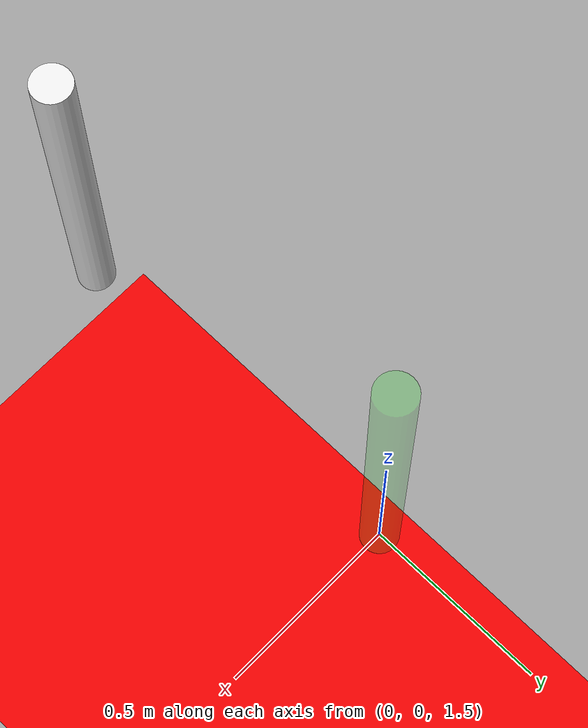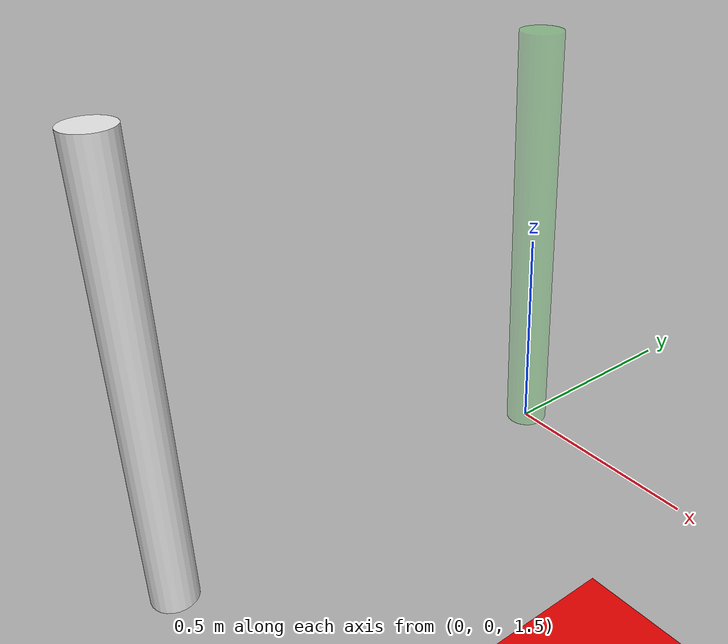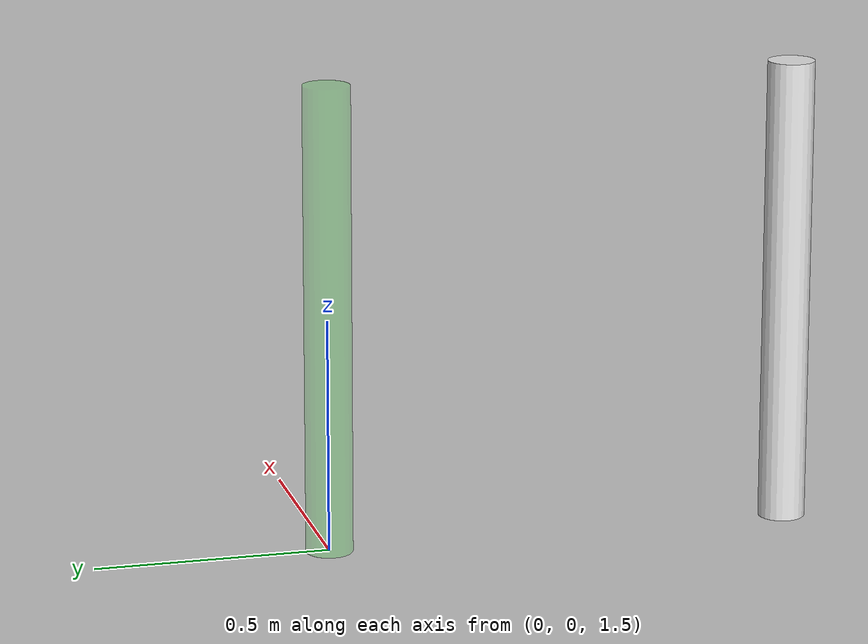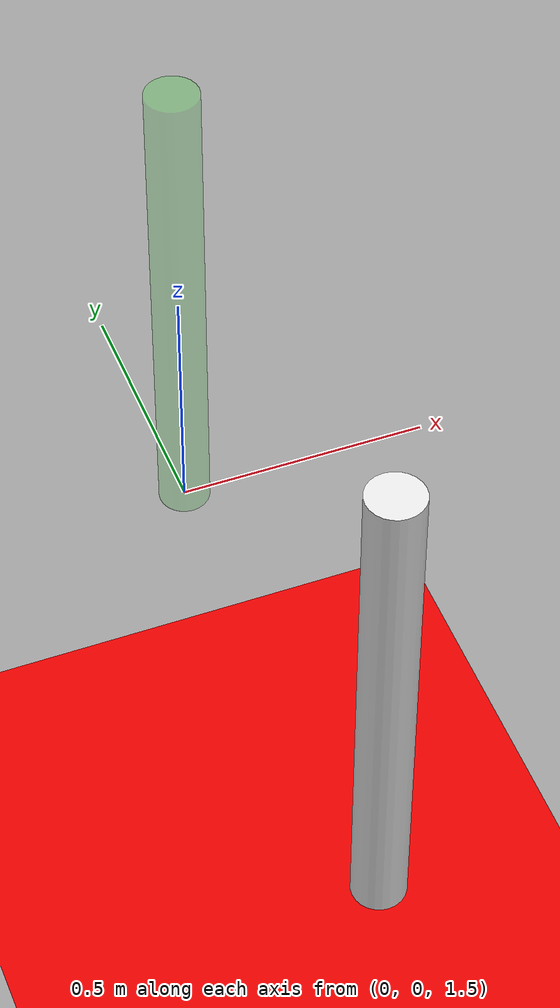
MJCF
<mujoco>

	<option timestep="0.001" integrator="RK4" gravity="0 0 -9.81">
		<flag contact="enable" energy="enable"/>
	</option>

	<worldbody>
    <light diffuse=".5 .5 .5" pos="0 0 3" dir="0 0 -1"/>
		<geom type="plane" size="5 5 0.1" rgba=".9 0 0 1"/>

		<body name="pole" pos="0 0 2" euler="0 0 0">
			<joint name="x" type="slide" pos="0 0 0.5" axis="1 0 0" />
			<joint name="z" type="slide" pos="0 0 0.5" axis="0 0 1" />
			<joint name="pin" type="hinge" pos="0 0 0.5" axis="0 -1 0" />
			<geom  type="cylinder" size=".05 .5" rgba="0 .9 0 0.1" mass="1"/>
		</body>

		<body name="pole2" pos="0 -1 2" euler="0 0 0">
			<joint name="x2" type="slide" pos="0 0 0.5" axis="1 0 0" />
			<joint name="z2" type="slide" pos="0 0 0.5" axis="0 0 1" />
			<joint name="pin2" type="hinge" pos="0 0 0.5" axis="0 -1 0" />
			<geom  type="cylinder" size=".05 .5" rgba=".9 .9 .9 1" mass="1"/>
		</body>
	</worldbody>

	<equality>
		<connect body1="pole" body2="world" anchor="0 0 0.5" />
	</equality>

	<actuator>
		<motor name="torque" joint="pin" gear="1" ctrlrange="-100 100" ctrllimited="true"/>
		<position name="position_servo" joint="pin" kp="0"/>
		<velocity name="velocity_servo" joint="pin" kv="0"/>
	</actuator>

</mujoco>
